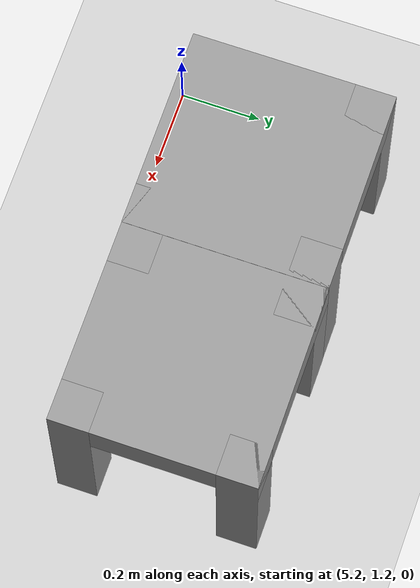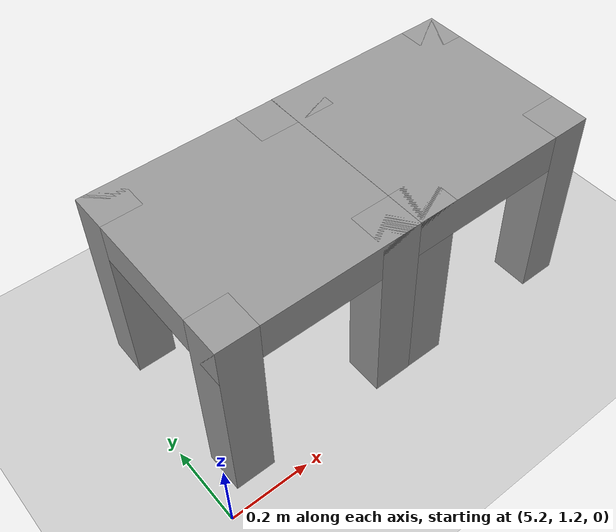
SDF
<sdf version="1.6">
 <world name="default">
  <model name="ground_plane">
   <pose>6.5 0 0 0 -0 0</pose>
   <static>1</static>
   <link name="link">
    <collision name="collision">
     <geometry><plane><normal>0 0 1</normal><size>100 100</size></plane></geometry>
     <surface>
      <contact><collide_bitmask>65535</collide_bitmask></contact>
      <friction><ode><mu>100</mu><mu2>50</mu2></ode></friction>
     </surface>
    </collision>
    <visual name="visual">
     <cast_shadows>0</cast_shadows>
     <geometry><plane><normal>0 0 1</normal><size>100 100</size></plane></geometry>
     <material>
      <script><uri>file://media/materials/scripts/gazebo.material</uri><name>Gazebo/Grey</name></script>
     </material>
    </visual>
   </link>
  </model>
  <model name="little_table_SF">
   <link name="link_0">
    <inertial>
     <mass>1</mass>
     <inertia>
      <ixx>0.166667</ixx>
      <ixy>0</ixy>
      <ixz>0</ixz>
      <iyy>0.166667</iyy>
      <iyz>0</iyz>
      <izz>0.166667</izz>
     </inertia>
    </inertial>
    <pose>-0.2 -0.2 -0.04 0 -0 0</pose>
    <visual name="visual">
     <geometry><box><size>0.1 0.1 0.5</size></box></geometry>
     <material>
      <lighting>1</lighting>
      <script><uri>file://media/materials/scripts/gazebo.material</uri><name>Gazebo/Grey</name></script>
      <shader type="pixel"><normal_map>__default__</normal_map></shader>
      <ambient>0.3 0.3 0.3 1</ambient>
      <diffuse>0.7 0.7 0.7 1</diffuse>
      <specular>0.01 0.01 0.01 1</specular>
      <emissive>0 0 0 1</emissive>
     </material>
    </visual>
    <collision name="collision">
     <geometry><box><size>0.1 0.1 0.5</size></box></geometry>
     <surface>
      <friction>
       <ode><mu>1</mu><mu2>1</mu2><fdir1>0 0 0</fdir1><slip1>0</slip1><slip2>0</slip2></ode>
       <torsional>
        <coefficient>1</coefficient>
        <patch_radius>0</patch_radius>
        <surface_radius>0</surface_radius>
        <use_patch_radius>1</use_patch_radius>
        <ode><slip>0</slip></ode>
       </torsional>
      </friction>
      <bounce><restitution_coefficient>0</restitution_coefficient><threshold>1e+06</threshold></bounce>
      <contact>
       <collide_without_contact>0</collide_without_contact>
       <collide_without_contact_bitmask>1</collide_without_contact_bitmask>
       <collide_bitmask>1</collide_bitmask>
       <ode>
        <soft_cfm>0</soft_cfm>
        <soft_erp>0.2</soft_erp>
        <kp>1e+13</kp>
        <kd>1</kd>
        <max_vel>0.01</max_vel>
        <min_depth>0</min_depth>
       </ode>
       <bullet>
        <split_impulse>1</split_impulse>
        <split_impulse_penetration_threshold>-0.01</split_impulse_penetration_threshold>
        <soft_cfm>0</soft_cfm>
        <soft_erp>0.2</soft_erp>
        <kp>1e+13</kp>
        <kd>1</kd>
       </bullet>
      </contact>
     </surface>
    </collision>
   </link>
   <link name="link_0_clone">
    <inertial>
     <mass>1</mass>
     <inertia>
      <ixx>0.166667</ixx>
      <ixy>0</ixy>
      <ixz>0</ixz>
      <iyy>0.166667</iyy>
      <iyz>0</iyz>
      <izz>0.166667</izz>
     </inertia>
    </inertial>
    <pose>0.2 -0.2 -0.04 0 -0 0</pose>
    <visual name="visual">
     <geometry><box><size>0.1 0.1 0.5</size></box></geometry>
     <material>
      <lighting>1</lighting>
      <script><uri>file://media/materials/scripts/gazebo.material</uri><name>Gazebo/Grey</name></script>
      <shader type="pixel"><normal_map>__default__</normal_map></shader>
      <ambient>0.3 0.3 0.3 1</ambient>
      <diffuse>0.7 0.7 0.7 1</diffuse>
      <specular>0.01 0.01 0.01 1</specular>
      <emissive>0 0 0 1</emissive>
     </material>
    </visual>
    <collision name="collision">
     <geometry><box><size>0.1 0.1 0.5</size></box></geometry>
     <surface>
      <friction>
       <ode><mu>1</mu><mu2>1</mu2><fdir1>0 0 0</fdir1><slip1>0</slip1><slip2>0</slip2></ode>
       <torsional>
        <coefficient>1</coefficient>
        <patch_radius>0</patch_radius>
        <surface_radius>0</surface_radius>
        <use_patch_radius>1</use_patch_radius>
        <ode><slip>0</slip></ode>
       </torsional>
      </friction>
      <bounce><restitution_coefficient>0</restitution_coefficient><threshold>1e+06</threshold></bounce>
      <contact>
       <collide_without_contact>0</collide_without_contact>
       <collide_without_contact_bitmask>1</collide_without_contact_bitmask>
       <collide_bitmask>1</collide_bitmask>
       <ode>
        <soft_cfm>0</soft_cfm>
        <soft_erp>0.2</soft_erp>
        <kp>1e+13</kp>
        <kd>1</kd>
        <max_vel>0.01</max_vel>
        <min_depth>0</min_depth>
       </ode>
       <bullet>
        <split_impulse>1</split_impulse>
        <split_impulse_penetration_threshold>-0.01</split_impulse_penetration_threshold>
        <soft_cfm>0</soft_cfm>
        <soft_erp>0.2</soft_erp>
        <kp>1e+13</kp>
        <kd>1</kd>
       </bullet>
      </contact>
     </surface>
    </collision>
   </link>
   <link name="link_0_clone_0">
    <inertial>
     <mass>1</mass>
     <inertia>
      <ixx>0.166667</ixx>
      <ixy>0</ixy>
      <ixz>0</ixz>
      <iyy>0.166667</iyy>
      <iyz>0</iyz>
      <izz>0.166667</izz>
     </inertia>
    </inertial>
    <pose>-0.2 0.2 -0.04 0 -0 0</pose>
    <visual name="visual">
     <geometry><box><size>0.1 0.1 0.5</size></box></geometry>
     <material>
      <lighting>1</lighting>
      <script><uri>file://media/materials/scripts/gazebo.material</uri><name>Gazebo/Grey</name></script>
      <shader type="pixel"><normal_map>__default__</normal_map></shader>
      <ambient>0.3 0.3 0.3 1</ambient>
      <diffuse>0.7 0.7 0.7 1</diffuse>
      <specular>0.01 0.01 0.01 1</specular>
      <emissive>0 0 0 1</emissive>
     </material>
    </visual>
    <collision name="collision">
     <geometry><box><size>0.1 0.1 0.5</size></box></geometry>
     <surface>
      <friction>
       <ode><mu>1</mu><mu2>1</mu2><fdir1>0 0 0</fdir1><slip1>0</slip1><slip2>0</slip2></ode>
       <torsional>
        <coefficient>1</coefficient>
        <patch_radius>0</patch_radius>
        <surface_radius>0</surface_radius>
        <use_patch_radius>1</use_patch_radius>
        <ode><slip>0</slip></ode>
       </torsional>
      </friction>
      <bounce><restitution_coefficient>0</restitution_coefficient><threshold>1e+06</threshold></bounce>
      <contact>
       <collide_without_contact>0</collide_without_contact>
       <collide_without_contact_bitmask>1</collide_without_contact_bitmask>
       <collide_bitmask>1</collide_bitmask>
       <ode>
        <soft_cfm>0</soft_cfm>
        <soft_erp>0.2</soft_erp>
        <kp>1e+13</kp>
        <kd>1</kd>
        <max_vel>0.01</max_vel>
        <min_depth>0</min_depth>
       </ode>
       <bullet>
        <split_impulse>1</split_impulse>
        <split_impulse_penetration_threshold>-0.01</split_impulse_penetration_threshold>
        <soft_cfm>0</soft_cfm>
        <soft_erp>0.2</soft_erp>
        <kp>1e+13</kp>
        <kd>1</kd>
       </bullet>
      </contact>
     </surface>
    </collision>
   </link>
   <link name="link_0_clone_1">
    <inertial>
     <mass>1</mass>
     <inertia>
      <ixx>0.166667</ixx>
      <ixy>0</ixy>
      <ixz>0</ixz>
      <iyy>0.166667</iyy>
      <iyz>0</iyz>
      <izz>0.166667</izz>
     </inertia>
    </inertial>
    <pose>0.2 0.2 -0.04 0 -0 0</pose>
    <visual name="visual">
     <geometry><box><size>0.1 0.1 0.5</size></box></geometry>
     <material>
      <lighting>1</lighting>
      <script><uri>file://media/materials/scripts/gazebo.material</uri><name>Gazebo/Grey</name></script>
      <shader type="pixel"><normal_map>__default__</normal_map></shader>
      <ambient>0.3 0.3 0.3 1</ambient>
      <diffuse>0.7 0.7 0.7 1</diffuse>
      <specular>0.01 0.01 0.01 1</specular>
      <emissive>0 0 0 1</emissive>
     </material>
    </visual>
    <collision name="collision">
     <geometry><box><size>0.1 0.1 0.5</size></box></geometry>
     <surface>
      <friction>
       <ode><mu>1</mu><mu2>1</mu2><fdir1>0 0 0</fdir1><slip1>0</slip1><slip2>0</slip2></ode>
       <torsional>
        <coefficient>1</coefficient>
        <patch_radius>0</patch_radius>
        <surface_radius>0</surface_radius>
        <use_patch_radius>1</use_patch_radius>
        <ode><slip>0</slip></ode>
       </torsional>
      </friction>
      <bounce><restitution_coefficient>0</restitution_coefficient><threshold>1e+06</threshold></bounce>
      <contact>
       <collide_without_contact>0</collide_without_contact>
       <collide_without_contact_bitmask>1</collide_without_contact_bitmask>
       <collide_bitmask>1</collide_bitmask>
       <ode>
        <soft_cfm>0</soft_cfm>
        <soft_erp>0.2</soft_erp>
        <kp>1e+13</kp>
        <kd>1</kd>
        <max_vel>0.01</max_vel>
        <min_depth>0</min_depth>
       </ode>
       <bullet>
        <split_impulse>1</split_impulse>
        <split_impulse_penetration_threshold>-0.01</split_impulse_penetration_threshold>
        <soft_cfm>0</soft_cfm>
        <soft_erp>0.2</soft_erp>
        <kp>1e+13</kp>
        <kd>1</kd>
       </bullet>
      </contact>
     </surface>
    </collision>
   </link>
   <link name="link_1">
    <inertial>
     <mass>1</mass>
     <inertia>
      <ixx>0.166667</ixx>
      <ixy>0</ixy>
      <ixz>0</ixz>
      <iyy>0.166667</iyy>
      <iyz>0</iyz>
      <izz>0.166667</izz>
     </inertia>
    </inertial>
    <pose>0 0 0.16 0 -0 0</pose>
    <visual name="visual">
     <geometry><box><size>0.5 0.5 0.1</size></box></geometry>
     <material>
      <lighting>1</lighting>
      <script><uri>file://media/materials/scripts/gazebo.material</uri><name>Gazebo/Grey</name></script>
      <shader type="pixel"><normal_map>__default__</normal_map></shader>
      <ambient>0.3 0.3 0.3 1</ambient>
      <diffuse>0.7 0.7 0.7 1</diffuse>
      <specular>0.01 0.01 0.01 1</specular>
      <emissive>0 0 0 1</emissive>
     </material>
    </visual>
    <collision name="collision">
     <geometry><box><size>0.5 0.5 0.1</size></box></geometry>
     <surface>
      <friction>
       <ode><mu>1</mu><mu2>1</mu2><fdir1>0 0 0</fdir1><slip1>0</slip1><slip2>0</slip2></ode>
       <torsional>
        <coefficient>1</coefficient>
        <patch_radius>0</patch_radius>
        <surface_radius>0</surface_radius>
        <use_patch_radius>1</use_patch_radius>
        <ode><slip>0</slip></ode>
       </torsional>
      </friction>
      <bounce><restitution_coefficient>0</restitution_coefficient><threshold>1e+06</threshold></bounce>
      <contact>
       <collide_without_contact>0</collide_without_contact>
       <collide_without_contact_bitmask>1</collide_without_contact_bitmask>
       <collide_bitmask>1</collide_bitmask>
       <ode>
        <soft_cfm>0</soft_cfm>
        <soft_erp>0.2</soft_erp>
        <kp>1e+13</kp>
        <kd>1</kd>
        <max_vel>0.01</max_vel>
        <min_depth>0</min_depth>
       </ode>
       <bullet>
        <split_impulse>1</split_impulse>
        <split_impulse_penetration_threshold>-0.01</split_impulse_penetration_threshold>
        <soft_cfm>0</soft_cfm>
        <soft_erp>0.2</soft_erp>
        <kp>1e+13</kp>
        <kd>1</kd>
       </bullet>
      </contact>
     </surface>
    </collision>
   </link>
   <joint name="link_1_JOINT_0" type="fixed">
    <parent>link_1</parent>
    <child>link_0_clone_0</child>
    <physics>
     <ode><limit><cfm>0</cfm><erp>0.2</erp></limit><suspension><cfm>0</cfm><erp>0.2</erp></suspension></ode>
    </physics>
   </joint>
   <joint name="link_1_JOINT_1" type="fixed">
    <parent>link_1</parent>
    <child>link_0</child>
    <physics>
     <ode><limit><cfm>0</cfm><erp>0.2</erp></limit><suspension><cfm>0</cfm><erp>0.2</erp></suspension></ode>
    </physics>
   </joint>
   <joint name="link_1_JOINT_2" type="fixed">
    <parent>link_1</parent>
    <child>link_0_clone_1</child>
    <physics>
     <ode><limit><cfm>0</cfm><erp>0.2</erp></limit><suspension><cfm>0</cfm><erp>0.2</erp></suspension></ode>
    </physics>
   </joint>
   <joint name="link_1_JOINT_3" type="fixed">
    <parent>link_1</parent>
    <child>link_0_clone</child>
    <physics>
     <ode><limit><cfm>0</cfm><erp>0.2</erp></limit><suspension><cfm>0</cfm><erp>0.2</erp></suspension></ode>
    </physics>
   </joint>
   <static>0</static>
   <pose>5.49895 1.49965 0.29 -3e-06 2e-06 -8e-06</pose>
  </model>
  <model name="little_table_SF_clone">
   <link name="link_0">
    <inertial>
     <mass>1</mass>
     <inertia>
      <ixx>0.166667</ixx>
      <ixy>0</ixy>
      <ixz>0</ixz>
      <iyy>0.166667</iyy>
      <iyz>0</iyz>
      <izz>0.166667</izz>
     </inertia>
    </inertial>
    <pose>-0.2 -0.2 -0.04 0 -0 0</pose>
    <visual name="visual">
     <geometry><box><size>0.1 0.1 0.5</size></box></geometry>
     <material>
      <lighting>1</lighting>
      <script><uri>file://media/materials/scripts/gazebo.material</uri><name>Gazebo/Grey</name></script>
      <shader type="pixel"><normal_map>__default__</normal_map></shader>
      <ambient>0.3 0.3 0.3 1</ambient>
      <diffuse>0.7 0.7 0.7 1</diffuse>
      <specular>0.01 0.01 0.01 1</specular>
      <emissive>0 0 0 1</emissive>
     </material>
    </visual>
    <collision name="collision">
     <geometry><box><size>0.1 0.1 0.5</size></box></geometry>
     <surface>
      <friction>
       <ode><mu>1</mu><mu2>1</mu2><fdir1>0 0 0</fdir1><slip1>0</slip1><slip2>0</slip2></ode>
       <torsional>
        <coefficient>1</coefficient>
        <patch_radius>0</patch_radius>
        <surface_radius>0</surface_radius>
        <use_patch_radius>1</use_patch_radius>
        <ode><slip>0</slip></ode>
       </torsional>
      </friction>
      <bounce><restitution_coefficient>0</restitution_coefficient><threshold>1e+06</threshold></bounce>
      <contact>
       <collide_without_contact>0</collide_without_contact>
       <collide_without_contact_bitmask>1</collide_without_contact_bitmask>
       <collide_bitmask>1</collide_bitmask>
       <ode>
        <soft_cfm>0</soft_cfm>
        <soft_erp>0.2</soft_erp>
        <kp>1e+13</kp>
        <kd>1</kd>
        <max_vel>0.01</max_vel>
        <min_depth>0</min_depth>
       </ode>
       <bullet>
        <split_impulse>1</split_impulse>
        <split_impulse_penetration_threshold>-0.01</split_impulse_penetration_threshold>
        <soft_cfm>0</soft_cfm>
        <soft_erp>0.2</soft_erp>
        <kp>1e+13</kp>
        <kd>1</kd>
       </bullet>
      </contact>
     </surface>
    </collision>
   </link>
   <link name="link_0_clone">
    <inertial>
     <mass>1</mass>
     <inertia>
      <ixx>0.166667</ixx>
      <ixy>0</ixy>
      <ixz>0</ixz>
      <iyy>0.166667</iyy>
      <iyz>0</iyz>
      <izz>0.166667</izz>
     </inertia>
    </inertial>
    <pose>0.2 -0.2 -0.04 0 -0 0</pose>
    <visual name="visual">
     <geometry><box><size>0.1 0.1 0.5</size></box></geometry>
     <material>
      <lighting>1</lighting>
      <script><uri>file://media/materials/scripts/gazebo.material</uri><name>Gazebo/Grey</name></script>
      <shader type="pixel"><normal_map>__default__</normal_map></shader>
      <ambient>0.3 0.3 0.3 1</ambient>
      <diffuse>0.7 0.7 0.7 1</diffuse>
      <specular>0.01 0.01 0.01 1</specular>
      <emissive>0 0 0 1</emissive>
     </material>
    </visual>
    <collision name="collision">
     <geometry><box><size>0.1 0.1 0.5</size></box></geometry>
     <surface>
      <friction>
       <ode><mu>1</mu><mu2>1</mu2><fdir1>0 0 0</fdir1><slip1>0</slip1><slip2>0</slip2></ode>
       <torsional>
        <coefficient>1</coefficient>
        <patch_radius>0</patch_radius>
        <surface_radius>0</surface_radius>
        <use_patch_radius>1</use_patch_radius>
        <ode><slip>0</slip></ode>
       </torsional>
      </friction>
      <bounce><restitution_coefficient>0</restitution_coefficient><threshold>1e+06</threshold></bounce>
      <contact>
       <collide_without_contact>0</collide_without_contact>
       <collide_without_contact_bitmask>1</collide_without_contact_bitmask>
       <collide_bitmask>1</collide_bitmask>
       <ode>
        <soft_cfm>0</soft_cfm>
        <soft_erp>0.2</soft_erp>
        <kp>1e+13</kp>
        <kd>1</kd>
        <max_vel>0.01</max_vel>
        <min_depth>0</min_depth>
       </ode>
       <bullet>
        <split_impulse>1</split_impulse>
        <split_impulse_penetration_threshold>-0.01</split_impulse_penetration_threshold>
        <soft_cfm>0</soft_cfm>
        <soft_erp>0.2</soft_erp>
        <kp>1e+13</kp>
        <kd>1</kd>
       </bullet>
      </contact>
     </surface>
    </collision>
   </link>
   <link name="link_0_clone_0">
    <inertial>
     <mass>1</mass>
     <inertia>
      <ixx>0.166667</ixx>
      <ixy>0</ixy>
      <ixz>0</ixz>
      <iyy>0.166667</iyy>
      <iyz>0</iyz>
      <izz>0.166667</izz>
     </inertia>
    </inertial>
    <pose>-0.2 0.2 -0.04 0 -0 0</pose>
    <visual name="visual">
     <geometry><box><size>0.1 0.1 0.5</size></box></geometry>
     <material>
      <lighting>1</lighting>
      <script><uri>file://media/materials/scripts/gazebo.material</uri><name>Gazebo/Grey</name></script>
      <shader type="pixel"><normal_map>__default__</normal_map></shader>
      <ambient>0.3 0.3 0.3 1</ambient>
      <diffuse>0.7 0.7 0.7 1</diffuse>
      <specular>0.01 0.01 0.01 1</specular>
      <emissive>0 0 0 1</emissive>
     </material>
    </visual>
    <collision name="collision">
     <geometry><box><size>0.1 0.1 0.5</size></box></geometry>
     <surface>
      <friction>
       <ode><mu>1</mu><mu2>1</mu2><fdir1>0 0 0</fdir1><slip1>0</slip1><slip2>0</slip2></ode>
       <torsional>
        <coefficient>1</coefficient>
        <patch_radius>0</patch_radius>
        <surface_radius>0</surface_radius>
        <use_patch_radius>1</use_patch_radius>
        <ode><slip>0</slip></ode>
       </torsional>
      </friction>
      <bounce><restitution_coefficient>0</restitution_coefficient><threshold>1e+06</threshold></bounce>
      <contact>
       <collide_without_contact>0</collide_without_contact>
       <collide_without_contact_bitmask>1</collide_without_contact_bitmask>
       <collide_bitmask>1</collide_bitmask>
       <ode>
        <soft_cfm>0</soft_cfm>
        <soft_erp>0.2</soft_erp>
        <kp>1e+13</kp>
        <kd>1</kd>
        <max_vel>0.01</max_vel>
        <min_depth>0</min_depth>
       </ode>
       <bullet>
        <split_impulse>1</split_impulse>
        <split_impulse_penetration_threshold>-0.01</split_impulse_penetration_threshold>
        <soft_cfm>0</soft_cfm>
        <soft_erp>0.2</soft_erp>
        <kp>1e+13</kp>
        <kd>1</kd>
       </bullet>
      </contact>
     </surface>
    </collision>
   </link>
   <link name="link_0_clone_1">
    <inertial>
     <mass>1</mass>
     <inertia>
      <ixx>0.166667</ixx>
      <ixy>0</ixy>
      <ixz>0</ixz>
      <iyy>0.166667</iyy>
      <iyz>0</iyz>
      <izz>0.166667</izz>
     </inertia>
    </inertial>
    <pose>0.2 0.2 -0.04 0 -0 0</pose>
    <visual name="visual">
     <geometry><box><size>0.1 0.1 0.5</size></box></geometry>
     <material>
      <lighting>1</lighting>
      <script><uri>file://media/materials/scripts/gazebo.material</uri><name>Gazebo/Grey</name></script>
      <shader type="pixel"><normal_map>__default__</normal_map></shader>
      <ambient>0.3 0.3 0.3 1</ambient>
      <diffuse>0.7 0.7 0.7 1</diffuse>
      <specular>0.01 0.01 0.01 1</specular>
      <emissive>0 0 0 1</emissive>
     </material>
    </visual>
    <collision name="collision">
     <geometry><box><size>0.1 0.1 0.5</size></box></geometry>
     <surface>
      <friction>
       <ode><mu>1</mu><mu2>1</mu2><fdir1>0 0 0</fdir1><slip1>0</slip1><slip2>0</slip2></ode>
       <torsional>
        <coefficient>1</coefficient>
        <patch_radius>0</patch_radius>
        <surface_radius>0</surface_radius>
        <use_patch_radius>1</use_patch_radius>
        <ode><slip>0</slip></ode>
       </torsional>
      </friction>
      <bounce><restitution_coefficient>0</restitution_coefficient><threshold>1e+06</threshold></bounce>
      <contact>
       <collide_without_contact>0</collide_without_contact>
       <collide_without_contact_bitmask>1</collide_without_contact_bitmask>
       <collide_bitmask>1</collide_bitmask>
       <ode>
        <soft_cfm>0</soft_cfm>
        <soft_erp>0.2</soft_erp>
        <kp>1e+13</kp>
        <kd>1</kd>
        <max_vel>0.01</max_vel>
        <min_depth>0</min_depth>
       </ode>
       <bullet>
        <split_impulse>1</split_impulse>
        <split_impulse_penetration_threshold>-0.01</split_impulse_penetration_threshold>
        <soft_cfm>0</soft_cfm>
        <soft_erp>0.2</soft_erp>
        <kp>1e+13</kp>
        <kd>1</kd>
       </bullet>
      </contact>
     </surface>
    </collision>
   </link>
   <link name="link_1">
    <inertial>
     <mass>1</mass>
     <inertia>
      <ixx>0.166667</ixx>
      <ixy>0</ixy>
      <ixz>0</ixz>
      <iyy>0.166667</iyy>
      <iyz>0</iyz>
      <izz>0.166667</izz>
     </inertia>
    </inertial>
    <pose>0 0 0.16 0 -0 0</pose>
    <visual name="visual">
     <geometry><box><size>0.5 0.5 0.1</size></box></geometry>
     <material>
      <lighting>1</lighting>
      <script><uri>file://media/materials/scripts/gazebo.material</uri><name>Gazebo/Grey</name></script>
      <shader type="pixel"><normal_map>__default__</normal_map></shader>
      <ambient>0.3 0.3 0.3 1</ambient>
      <diffuse>0.7 0.7 0.7 1</diffuse>
      <specular>0.01 0.01 0.01 1</specular>
      <emissive>0 0 0 1</emissive>
     </material>
    </visual>
    <collision name="collision">
     <geometry><box><size>0.5 0.5 0.1</size></box></geometry>
     <surface>
      <friction>
       <ode><mu>1</mu><mu2>1</mu2><fdir1>0 0 0</fdir1><slip1>0</slip1><slip2>0</slip2></ode>
       <torsional>
        <coefficient>1</coefficient>
        <patch_radius>0</patch_radius>
        <surface_radius>0</surface_radius>
        <use_patch_radius>1</use_patch_radius>
        <ode><slip>0</slip></ode>
       </torsional>
      </friction>
      <bounce><restitution_coefficient>0</restitution_coefficient><threshold>1e+06</threshold></bounce>
      <contact>
       <collide_without_contact>0</collide_without_contact>
       <collide_without_contact_bitmask>1</collide_without_contact_bitmask>
       <collide_bitmask>1</collide_bitmask>
       <ode>
        <soft_cfm>0</soft_cfm>
        <soft_erp>0.2</soft_erp>
        <kp>1e+13</kp>
        <kd>1</kd>
        <max_vel>0.01</max_vel>
        <min_depth>0</min_depth>
       </ode>
       <bullet>
        <split_impulse>1</split_impulse>
        <split_impulse_penetration_threshold>-0.01</split_impulse_penetration_threshold>
        <soft_cfm>0</soft_cfm>
        <soft_erp>0.2</soft_erp>
        <kp>1e+13</kp>
        <kd>1</kd>
       </bullet>
      </contact>
     </surface>
    </collision>
   </link>
   <joint name="link_1_JOINT_0" type="fixed">
    <parent>link_1</parent>
    <child>link_0_clone_0</child>
    <physics>
     <ode><limit><cfm>0</cfm><erp>0.2</erp></limit><suspension><cfm>0</cfm><erp>0.2</erp></suspension></ode>
    </physics>
   </joint>
   <joint name="link_1_JOINT_1" type="fixed">
    <parent>link_1</parent>
    <child>link_0</child>
    <physics>
     <ode><limit><cfm>0</cfm><erp>0.2</erp></limit><suspension><cfm>0</cfm><erp>0.2</erp></suspension></ode>
    </physics>
   </joint>
   <joint name="link_1_JOINT_2" type="fixed">
    <parent>link_1</parent>
    <child>link_0_clone_1</child>
    <physics>
     <ode><limit><cfm>0</cfm><erp>0.2</erp></limit><suspension><cfm>0</cfm><erp>0.2</erp></suspension></ode>
    </physics>
   </joint>
   <joint name="link_1_JOINT_3" type="fixed">
    <parent>link_1</parent>
    <child>link_0_clone</child>
    <physics>
     <ode><limit><cfm>0</cfm><erp>0.2</erp></limit><suspension><cfm>0</cfm><erp>0.2</erp></suspension></ode>
    </physics>
   </joint>
   <static>0</static>
   <pose>5.99916 1.50019 0.290001 1e-06 -2e-06 -0.000167</pose>
  </model>
 </world>
</sdf>
